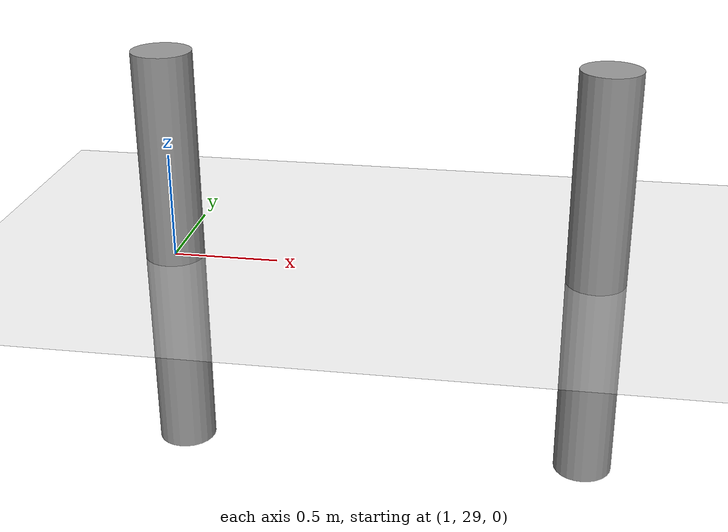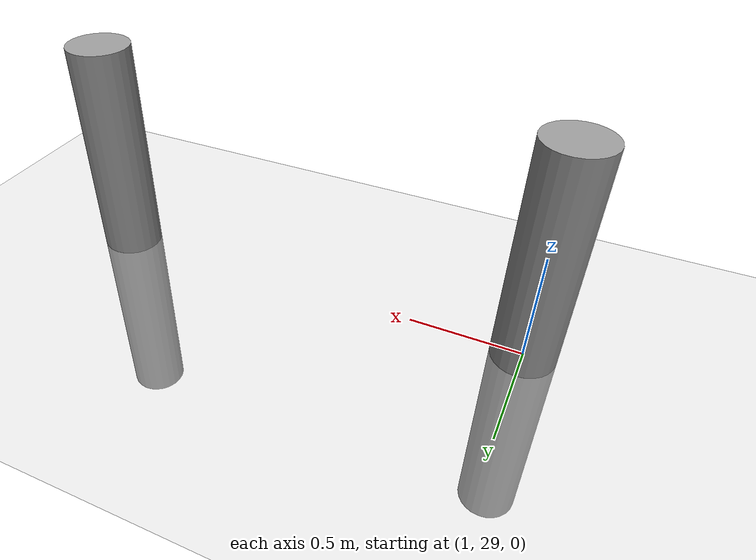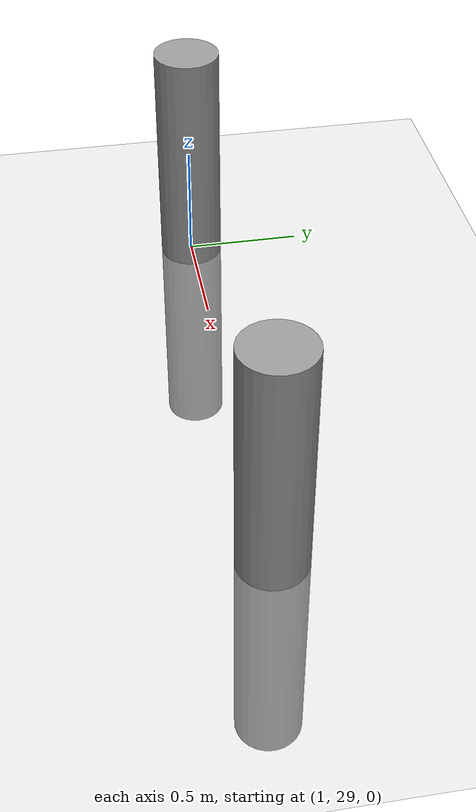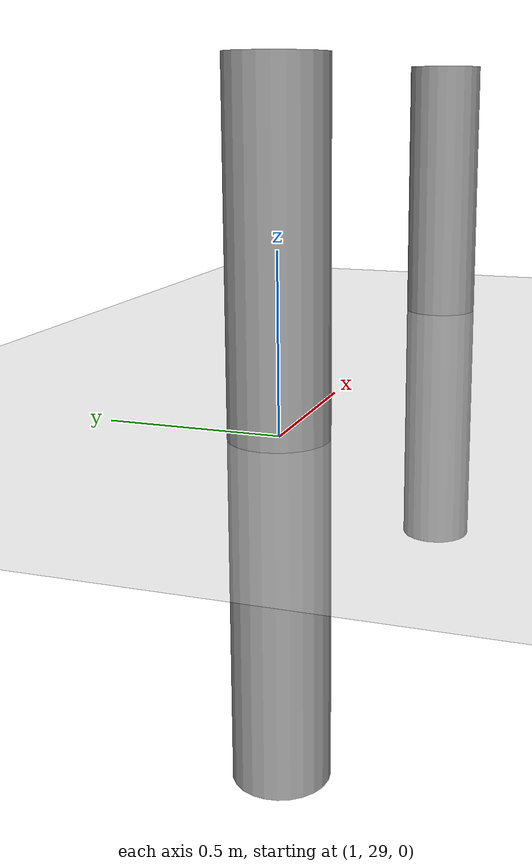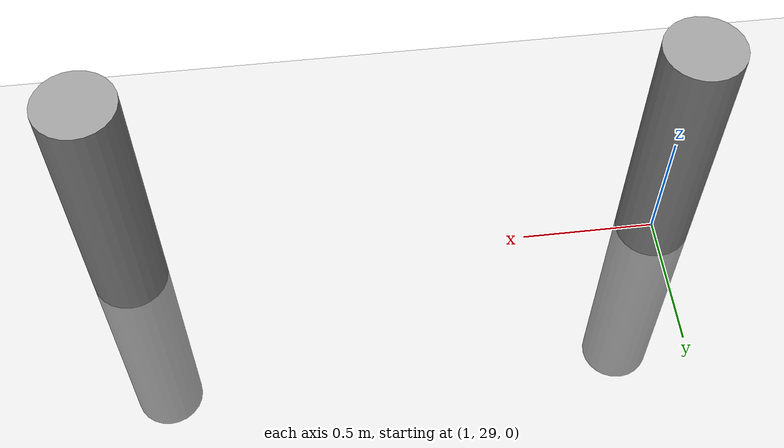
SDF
<sdf version="1.6">
 <world name="default">
  <model name="ground_plane">
   <static>1</static>
   <link name="link">
    <collision name="collision">
     <geometry><plane><normal>0 0 1</normal><size>100 100</size></plane></geometry>
     <surface><friction><ode><mu>100</mu><mu2>50</mu2></ode></friction></surface>
    </collision>
    <visual name="visual">
     <cast_shadows>0</cast_shadows>
     <geometry><plane><normal>0 0 1</normal><size>100 100</size></plane></geometry>
     <material>
      <script><uri>file://media/materials/scripts/gazebo.material</uri><name>Gazebo/Grey</name></script>
     </material>
    </visual>
   </link>
  </model>
  <model name="my_cylinder014_clone_41_0">
   <pose>3 29 0 0 -0 0</pose>
   <link name="my_cylinder014::link">
    <inertial>
     <mass>1</mass>
     <inertia><ixx>0.145833</ixx><ixy>0</ixy><ixz>0</ixz><iyy>0.145833</iyy><iyz>0</iyz><izz>0.125</izz></inertia>
    </inertial>
    <visual name="visual">
     <geometry><cylinder><radius>0.14</radius><length>2</length></cylinder></geometry>
     <material>
      <script><name>Gazebo/Grey</name><uri>file://media/materials/scripts/gazebo.material</uri></script>
      <ambient>0.3 0.3 0.3 1</ambient>
      <diffuse>0.7 0.7 0.7 1</diffuse>
      <specular>1 0.01 0.01 1</specular>
      <emissive>0 0 0 1</emissive>
      <shader type="vertex"><normal_map>__default__</normal_map></shader>
     </material>
    </visual>
    <collision name="collision">
     <geometry><cylinder><radius>0.14</radius><length>2</length></cylinder></geometry>
     <surface>
      <friction>
       <ode><mu>1</mu><mu2>1</mu2><fdir1>0 0 0</fdir1><slip1>0</slip1><slip2>0</slip2></ode>
       <torsional>
        <coefficient>1</coefficient>
        <patch_radius>0</patch_radius>
        <surface_radius>0</surface_radius>
        <use_patch_radius>1</use_patch_radius>
        <ode><slip>0</slip></ode>
       </torsional>
      </friction>
      <bounce><restitution_coefficient>0</restitution_coefficient><threshold>1e+06</threshold></bounce>
      <contact>
       <collide_without_contact>0</collide_without_contact>
       <collide_without_contact_bitmask>1</collide_without_contact_bitmask>
       <collide_bitmask>1</collide_bitmask>
       <ode>
        <soft_cfm>0</soft_cfm>
        <soft_erp>0.2</soft_erp>
        <kp>1e+13</kp>
        <kd>1</kd>
        <max_vel>0.01</max_vel>
        <min_depth>0</min_depth>
       </ode>
       <bullet>
        <split_impulse>1</split_impulse>
        <split_impulse_penetration_threshold>-0.01</split_impulse_penetration_threshold>
        <soft_cfm>0</soft_cfm>
        <soft_erp>0.2</soft_erp>
        <kp>1e+13</kp>
        <kd>1</kd>
       </bullet>
      </contact>
     </surface>
    </collision>
   </link>
   <static>1</static>
  </model>
  <model name="my_cylinder014_clone_40_1">
   <pose>1 29 0 0 -0 0</pose>
   <link name="my_cylinder014::link">
    <inertial>
     <mass>1</mass>
     <inertia><ixx>0.145833</ixx><ixy>0</ixy><ixz>0</ixz><iyy>0.145833</iyy><iyz>0</iyz><izz>0.125</izz></inertia>
    </inertial>
    <visual name="visual">
     <geometry><cylinder><radius>0.14</radius><length>2</length></cylinder></geometry>
     <material>
      <script><name>Gazebo/Grey</name><uri>file://media/materials/scripts/gazebo.material</uri></script>
      <ambient>0.3 0.3 0.3 1</ambient>
      <diffuse>0.7 0.7 0.7 1</diffuse>
      <specular>1 0.01 0.01 1</specular>
      <emissive>0 0 0 1</emissive>
      <shader type="vertex"><normal_map>__default__</normal_map></shader>
     </material>
    </visual>
    <collision name="collision">
     <geometry><cylinder><radius>0.14</radius><length>2</length></cylinder></geometry>
     <surface>
      <friction>
       <ode><mu>1</mu><mu2>1</mu2><fdir1>0 0 0</fdir1><slip1>0</slip1><slip2>0</slip2></ode>
       <torsional>
        <coefficient>1</coefficient>
        <patch_radius>0</patch_radius>
        <surface_radius>0</surface_radius>
        <use_patch_radius>1</use_patch_radius>
        <ode><slip>0</slip></ode>
       </torsional>
      </friction>
      <bounce><restitution_coefficient>0</restitution_coefficient><threshold>1e+06</threshold></bounce>
      <contact>
       <collide_without_contact>0</collide_without_contact>
       <collide_without_contact_bitmask>1</collide_without_contact_bitmask>
       <collide_bitmask>1</collide_bitmask>
       <ode>
        <soft_cfm>0</soft_cfm>
        <soft_erp>0.2</soft_erp>
        <kp>1e+13</kp>
        <kd>1</kd>
        <max_vel>0.01</max_vel>
        <min_depth>0</min_depth>
       </ode>
       <bullet>
        <split_impulse>1</split_impulse>
        <split_impulse_penetration_threshold>-0.01</split_impulse_penetration_threshold>
        <soft_cfm>0</soft_cfm>
        <soft_erp>0.2</soft_erp>
        <kp>1e+13</kp>
        <kd>1</kd>
       </bullet>
      </contact>
     </surface>
    </collision>
   </link>
   <static>1</static>
  </model>
  <model name="my_cylinder014_clone_40_1">
   <pose>1 29 0 0 -0 0</pose>
   <link name="my_cylinder014::link">
    <inertial>
     <mass>1</mass>
     <inertia><ixx>0.145833</ixx><ixy>0</ixy><ixz>0</ixz><iyy>0.145833</iyy><iyz>0</iyz><izz>0.125</izz></inertia>
    </inertial>
    <visual name="visual">
     <geometry><cylinder><radius>0.14</radius><length>2</length></cylinder></geometry>
     <material>
      <script><name>Gazebo/Grey</name><uri>file://media/materials/scripts/gazebo.material</uri></script>
      <ambient>0.3 0.3 0.3 1</ambient>
      <diffuse>0.7 0.7 0.7 1</diffuse>
      <specular>1 0.01 0.01 1</specular>
      <emissive>0 0 0 1</emissive>
      <shader type="vertex"><normal_map>__default__</normal_map></shader>
     </material>
    </visual>
    <collision name="collision">
     <geometry><cylinder><radius>0.14</radius><length>2</length></cylinder></geometry>
     <surface>
      <friction>
       <ode><mu>1</mu><mu2>1</mu2><fdir1>0 0 0</fdir1><slip1>0</slip1><slip2>0</slip2></ode>
       <torsional>
        <coefficient>1</coefficient>
        <patch_radius>0</patch_radius>
        <surface_radius>0</surface_radius>
        <use_patch_radius>1</use_patch_radius>
        <ode><slip>0</slip></ode>
       </torsional>
      </friction>
      <bounce><restitution_coefficient>0</restitution_coefficient><threshold>1e+06</threshold></bounce>
      <contact>
       <collide_without_contact>0</collide_without_contact>
       <collide_without_contact_bitmask>1</collide_without_contact_bitmask>
       <collide_bitmask>1</collide_bitmask>
       <ode>
        <soft_cfm>0</soft_cfm>
        <soft_erp>0.2</soft_erp>
        <kp>1e+13</kp>
        <kd>1</kd>
        <max_vel>0.01</max_vel>
        <min_depth>0</min_depth>
       </ode>
       <bullet>
        <split_impulse>1</split_impulse>
        <split_impulse_penetration_threshold>-0.01</split_impulse_penetration_threshold>
        <soft_cfm>0</soft_cfm>
        <soft_erp>0.2</soft_erp>
        <kp>1e+13</kp>
        <kd>1</kd>
       </bullet>
      </contact>
     </surface>
    </collision>
   </link>
   <static>1</static>
  </model>
 </world>
</sdf>
